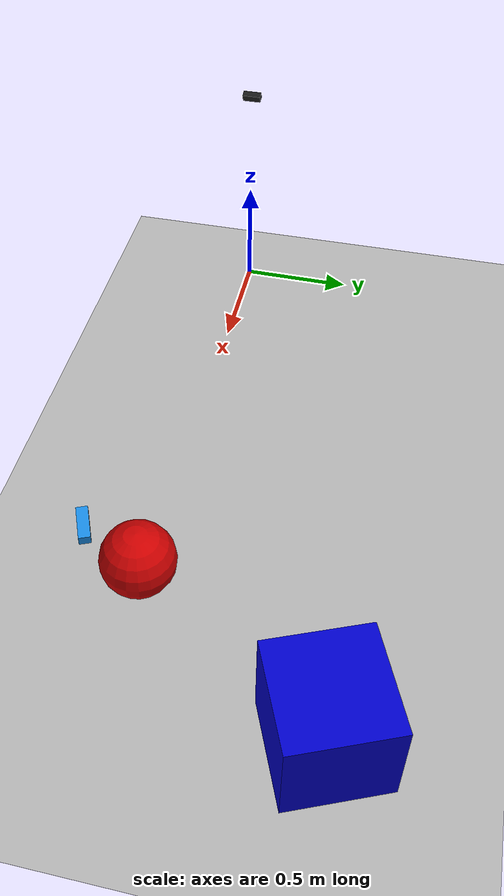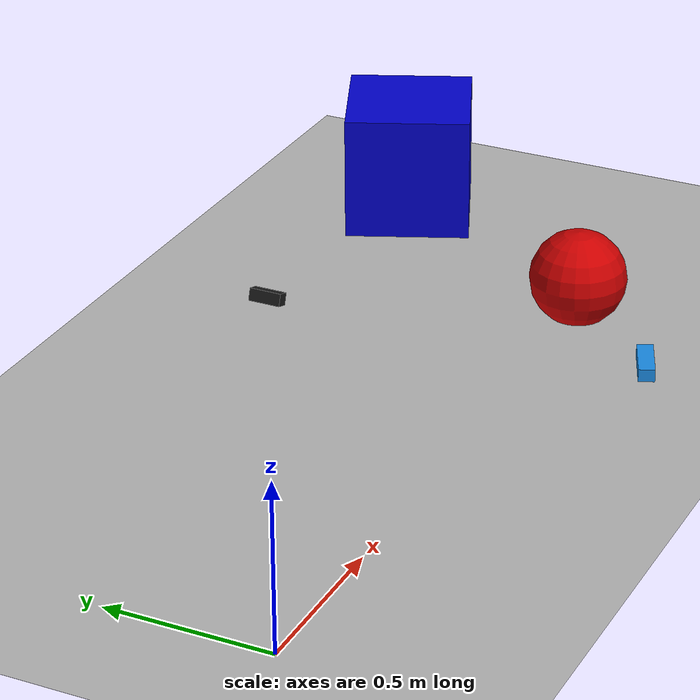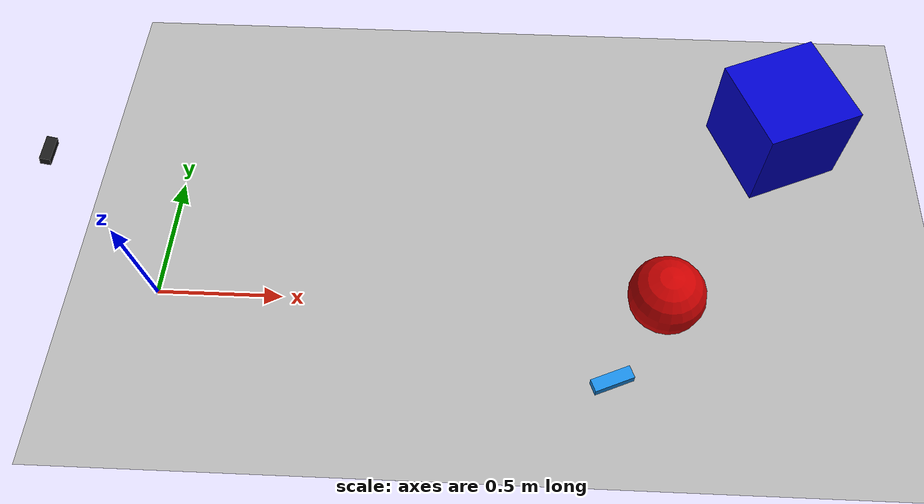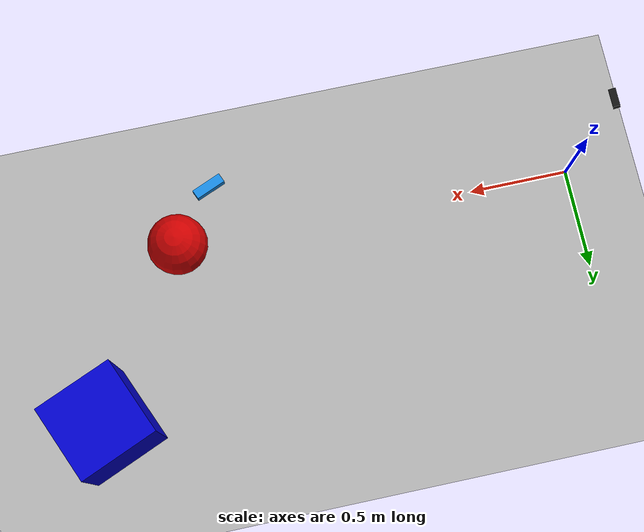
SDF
<?xml version="1.0" ?>
<sdf version="1.9">
  <world name="camera_world">
    <physics name="1ms" type="ignored">
      <max_step_size>0.001</max_step_size>
      <real_time_factor>1.0</real_time_factor>
    </physics>

    <plugin filename="gz-sim-physics-system" name="gz::sim::systems::Physics"/>
    <plugin filename="gz-sim-user-commands-system" name="gz::sim::systems::UserCommands"/>
    <plugin filename="gz-sim-scene-broadcaster-system" name="gz::sim::systems::SceneBroadcaster"/>
    <plugin filename="gz-sim-sensors-system" name="gz::sim::systems::Sensors">
      <render_engine>ogre2</render_engine>
    </plugin>

    <light type="directional" name="sun">
      <cast_shadows>true</cast_shadows>
      <pose>0 0 10 0 0 0</pose>
      <diffuse>0.8 0.8 0.8 1</diffuse>
      <specular>0.2 0.2 0.2 1</specular>
      <direction>-0.5 0.1 -0.9</direction>
    </light>

    <model name="ground_plane">
      <static>true</static>
      <link name="link">
        <collision name="collision">
          <geometry><plane><normal>0 0 1</normal><size>20 20</size></plane></geometry>
        </collision>
        <visual name="visual">
          <geometry><plane><normal>0 0 1</normal><size>20 20</size></plane></geometry>
          <material>
            <ambient>0.7 0.7 0.7 1</ambient>
            <diffuse>0.7 0.7 0.7 1</diffuse>
          </material>
        </visual>
      </link>
    </model>

    <model name="camera">
      <static>true</static>
      <!-- x y z roll pitch yaw: 1 m high, pitched 0.3 rad down, looking along +X -->
      <pose>0 0 1.0 0 0.3 0</pose>
      <link name="camera_link">
        <visual name="body">
          <geometry><box><size>0.03 0.08 0.03</size></box></geometry>
          <material><diffuse>0.1 0.1 0.1 1</diffuse></material>
        </visual>
        <sensor name="camera" type="camera">
          <always_on>true</always_on>
          <update_rate>30</update_rate>
          <visualize>true</visualize>
          <topic>camera/image_raw</topic>
          <gz_frame_id>camera_optical_frame</gz_frame_id>
          <camera>
            <!-- Measured on the real USB camera (config/usb_camera_calibration.yaml):
                 fx=653.7 at 640 px -> 52.2 deg. Lens distortion is NOT simulated. -->
            <horizontal_fov>0.911</horizontal_fov>
            <image>
              <width>640</width>
              <height>480</height>
              <format>R8G8B8</format>
            </image>
            <clip><near>0.05</near><far>50</far></clip>
            <noise>
              <type>gaussian</type>
              <mean>0.0</mean>
              <stddev>0.007</stddev>
            </noise>
          </camera>
        </sensor>
      </link>
    </model>

    <model name="red_ball">
      <pose>2.0 0 0.15 0 0 0</pose>
      <link name="link">
        <inertial><mass>0.5</mass></inertial>
        <collision name="collision">
          <geometry><sphere><radius>0.15</radius></sphere></geometry>
        </collision>
        <visual name="visual">
          <geometry><sphere><radius>0.15</radius></sphere></geometry>
          <material>
            <ambient>0.8 0 0 1</ambient>
            <diffuse>0.8 0 0 1</diffuse>
          </material>
        </visual>
      </link>
    </model>

    <!-- Search target for the cuboid demo: 16 x 5 x 4 cm, cyan-ish blue like the real one -->
    <model name="blue_cuboid">
      <pose>1.8 -0.3 0.02 0 0 0.4</pose>
      <link name="link">
        <inertial>
          <mass>0.1</mass>
          <inertia>
            <ixx>3.4e-5</ixx><iyy>2.3e-4</iyy><izz>2.3e-4</izz>
            <ixy>0</ixy><ixz>0</ixz><iyz>0</iyz>
          </inertia>
        </inertial>
        <collision name="collision">
          <geometry><box><size>0.16 0.05 0.04</size></box></geometry>
        </collision>
        <visual name="visual">
          <geometry><box><size>0.16 0.05 0.04</size></box></geometry>
          <material>
            <ambient>0.1 0.55 0.9 1</ambient>
            <diffuse>0.1 0.55 0.9 1</diffuse>
          </material>
        </visual>
      </link>
    </model>

    <!-- Distractor for the cuboid demo: blue but cube-shaped, must NOT be reported -->
    <model name="blue_box">
      <static>true</static>
      <pose>2.5 0.8 0.2 0 0 0.4</pose>
      <link name="link">
        <collision name="collision">
          <geometry><box><size>0.4 0.4 0.4</size></box></geometry>
        </collision>
        <visual name="visual">
          <geometry><box><size>0.4 0.4 0.4</size></box></geometry>
          <material>
            <ambient>0 0 0.8 1</ambient>
            <diffuse>0 0 0.8 1</diffuse>
          </material>
        </visual>
      </link>
    </model>
  </world>
</sdf>
